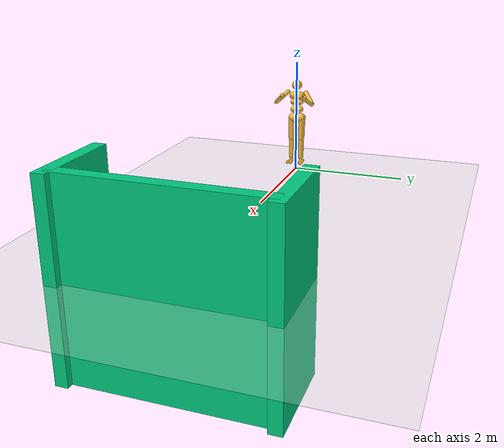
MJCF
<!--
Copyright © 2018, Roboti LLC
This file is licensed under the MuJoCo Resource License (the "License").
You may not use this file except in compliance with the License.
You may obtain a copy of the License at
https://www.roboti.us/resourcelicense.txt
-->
<mujoco model="Humanoid in Soccer Field">

    <compiler angle="degree"/>

    <option timestep="0.005" iterations="50" solver="Newton" jacobian="sparse" cone="pyramidal" tolerance="1e-10"/>

    <size njmax="1500" nconmax="500" nstack="5000000"/>

    <default>
        <geom solimp=".9 .9 .01"/>

        <default class="humanoid">
            <geom material="humanoid"/>
            <joint damping="1" limited="true"/>
            <motor ctrllimited="true" ctrlrange="-.4 .4"/>
        </default>

        <default class="object">
            <geom type="sphere" material="object" size="0.1"/>
        </default>

   </default>
    <asset>
   <texture builtin="gradient" height="100" rgb1=".4 .5 .6" rgb2="0 0 0" type="skybox" width="100"/>
        <texture builtin="flat" height="1278" mark="cross" markrgb="1 1 1" name="texgeom" random="0.01" rgb1="0.8 0.6 0.4" rgb2="0.8 0.6 0.4" type="cube" width="127"/>
        <texture builtin="checker" height="100" name="texplane" rgb1="0 0 0" rgb2="0.8 0.8 0.8" type="2d" width="100"/>
        <material name="MatPlane" reflectance="0.5" shininess="1" specular="1" texrepeat="60 60" texture="texplane"/>
        <material name="geom" texture="texgeom" texuniform="true"/>
        <material name='humanoid' texture="texgeom" texuniform="true" rgba="1.2 1.2 0.6 1"/>
        <material name='object' texture="texgeom" texuniform="true" rgba=".9 .1 .1 1" />
    </asset>

    <visual>
        <quality shadowsize="4096" offsamples="8"/>
        <map znear="0.1" force="0.05"/>
    </visual>

    <statistic extent="4"/>

    <worldbody>

        <light cutoff="100" diffuse="1 1 1" dir="-0 0 -1.3" directional="true" exponent="1" pos="0 0 1.3" specular=".1 .1 .1"/>

	<!--Floor-->
        <geom condim="3" friction="1 .1 .1" material="MatPlane" name="floor" pos="0 0 0" rgba="0.8 0.9 0.8 1" size="20 20 0.125" type="plane"/>
	<!--Goal-->
	<geom name="frontpost" type="box" rgba="0 0.8 0.5 1" pos="5.5 0 0" size=".1 1.5 1.5"/>
    <geom name="leftpost" type="box" rgba="0 0.8 0.5 1" pos="5 1.5 0" size="0.7 .1 1.5"/>
    <geom name="rightpost" type="box" rgba="0 0.8 0.5 1"  pos="5 -1.5 0" size="0.7 .1 1.5"/>

        <body name='torso' pos='0 0 1.4' childclass="humanoid">
            <freejoint name="root"/>
            <geom name='torso1' type='capsule' fromto='0 -.07 0 0 .07 0'  size='0.07'/>
            <geom name='head' type='sphere' pos='0 0 .19' size='.09'/>
            <geom name='uwaist' type='capsule' fromto='-.01 -.06 -.12 -.01 .06 -.12' size='0.06'/>
            <body name='lwaist' pos='-.01 0 -0.260' quat='1.000 0 -0.002 0' >
                <geom name='lwaist' type='capsule' fromto='0 -.06 0 0 .06 0'  size='0.06' />
                <joint name='abdomen_z' type='hinge' pos='0 0 0.065' axis='0 0 1' range='-45 45' damping='5' stiffness='20' armature='0.02' />
                <joint name='abdomen_y' type='hinge' pos='0 0 0.065' axis='0 1 0' range='-75 30' damping='5' stiffness='10' armature='0.02' />
                <body name='pelvis' pos='0 0 -0.165' quat='1.000 0 -0.002 0' >
                    <joint name='abdomen_x' type='hinge' pos='0 0 0.1' axis='1 0 0' range='-35 35' damping='5' stiffness='10' armature='0.02' />
                    <geom name='butt' type='capsule' fromto='-.02 -.07 0 -.02 .07 0'  size='0.09' />
                    <body name='right_thigh' pos='0 -0.1 -0.04' >
                        <joint name='right_hip_x' type='hinge' pos='0 0 0' axis='1 0 0' range='-25 5'   damping='5' stiffness='10' armature='0.01' />
                        <joint name='right_hip_z' type='hinge' pos='0 0 0' axis='0 0 1' range='-60 35'  damping='5' stiffness='10' armature='0.01' />
                        <joint name='right_hip_y' type='hinge' pos='0 0 0' axis='0 1 0' range='-120 20' damping='5' stiffness='20' armature='0.01' />
                        <geom name='right_thigh1' type='capsule' fromto='0 0 0 0 0.01 -.34'  size='0.06' />
                        <body name='right_shin' pos='0 0.01 -0.403' >
                            <joint name='right_knee' type='hinge' pos='0 0 .02' axis='0 -1 0' range='-160 -2' stiffness='1' armature='0.0060' />
                            <geom name='right_shin1' type='capsule' fromto='0 0 0 0 0 -.3'   size='0.049' />
                            <body name='right_foot' pos='0 0 -.39' >
                                <joint name='right_ankle_y' type='hinge' pos='0 0 0.08' axis='0 1 0'   range='-50 50' stiffness='4' armature='0.0008' />
                                <joint name='right_ankle_x' type='hinge' pos='0 0 0.04' axis='1 0 0.5' range='-50 50' stiffness='1'  armature='0.0006' />
                                <geom name='right_foot_cap1' type='capsule' fromto='-.07 -0.02 0 0.14 -0.04 0'  size='0.027' />
                                <geom name='right_foot_cap2' type='capsule' fromto='-.07 0 0 0.14  0.02 0'  size='0.027' />
                            </body>
                        </body>
                    </body>
                    <body name='left_thigh' pos='0 0.1 -0.04' >
                        <joint name='left_hip_x' type='hinge' pos='0 0 0' axis='-1 0 0' range='-25 5'  damping='5' stiffness='10' armature='0.01' />
                        <joint name='left_hip_z' type='hinge' pos='0 0 0' axis='0 0 -1' range='-60 35' damping='5' stiffness='10' armature='0.01' />
                        <joint name='left_hip_y' type='hinge' pos='0 0 0' axis='0 1 0' range='-120 20' damping='5' stiffness='20' armature='0.01' />
                        <geom name='left_thigh1' type='capsule' fromto='0 0 0 0 -0.01 -.34'  size='0.06' />
                        <body name='left_shin' pos='0 -0.01 -0.403' >
                            <joint name='left_knee' type='hinge' pos='0 0 .02' axis='0 -1 0' range='-160 -2' stiffness='1' armature='0.0060' />
                            <geom name='left_shin1' type='capsule' fromto='0 0 0 0 0 -.3'   size='0.049' />
                            <body name='left_foot' pos='0 0 -.39' >
                                <joint name='left_ankle_y' type='hinge' pos='0 0 0.08' axis='0 1 0'   range='-50 50'  stiffness='4' armature='0.0008' />
                                <joint name='left_ankle_x' type='hinge' pos='0 0 0.04' axis='1 0 0.5' range='-50 50'  stiffness='1'  armature='0.0006' />
                                <geom name='left_foot_cap1' type='capsule' fromto='-.07 0.02 0 0.14 0.04 0'  size='0.027' />
                                <geom name='left_foot_cap2' type='capsule' fromto='-.07 0 0 0.14  -0.02 0'  size='0.027' />
                            </body>
                        </body>
                    </body>
                </body>
            </body>
            <body name='right_upper_arm' pos='0 -0.17 0.06' >
                <joint name='right_shoulder1' type='hinge' pos='0 0 0' axis='2 1 1'  range='-85 60' stiffness='1' armature='0.0068' />
                <joint name='right_shoulder2' type='hinge' pos='0 0 0' axis='0 -1 1' range='-85 60' stiffness='1'  armature='0.0051' />
                <geom name='right_uarm1' type='capsule' fromto='0 0 0 .16 -.16 -.16'  size='0.04 0.16' />
                <body name='right_lower_arm' pos='.18 -.18 -.18' >
                    <joint name='right_elbow' type='hinge' pos='0 0 0' axis='0 -1 1' range='-90 50'  stiffness='0' armature='0.0028' />
                    <geom name='right_larm' type='capsule' fromto='0.01 0.01 0.01 .17 .17 .17'  size='0.031' />
                    <geom name='right_hand' type='sphere' pos='.18 .18 .18'  size='0.04'/>
                </body>
            </body>
            <body name='left_upper_arm' pos='0 0.17 0.06' >
                <joint name='left_shoulder1' type='hinge' pos='0 0 0' axis='2 -1 1' range='-60 85' stiffness='1' armature='0.0068' />
                <joint name='left_shoulder2' type='hinge' pos='0 0 0' axis='0 1 1' range='-60 85'  stiffness='1' armature='0.0051' />
                <geom name='left_uarm1' type='capsule' fromto='0 0 0 .16 .16 -.16'  size='0.04 0.16' />
                <body name='left_lower_arm' pos='.18 .18 -.18' >
                    <joint name='left_elbow' type='hinge' pos='0 0 0' axis='0 -1 -1' range='-90 50' stiffness='0' armature='0.0028' />
                    <geom name='left_larm' type='capsule' fromto='0.01 -0.01 0.01 .17 -.17 .17'  size='0.031' />
                    <geom name='left_hand' type='sphere' pos='.18 -.18 .18'  size='0.04'/>
                </body>
            </body>
        </body>

        <body pos="1 0.5 0" quat="0.471405 0.471405 0.707107 0.235702">
            <freejoint/>
            <geom class="object"/>
        </body>
    </worldbody>

<tendon>
        <fixed name="left_hipknee">
            <joint coef="-1" joint="left_hip_y"/>
            <joint coef="1" joint="left_knee"/>
        </fixed>
        <fixed name="right_hipknee">
            <joint coef="-1" joint="right_hip_y"/>
            <joint coef="1" joint="right_knee"/>
        </fixed>
    </tendon>

    <actuator>
        <motor gear="100" joint="abdomen_y" name="abdomen_y"/>
        <motor gear="100" joint="abdomen_z" name="abdomen_z"/>
        <motor gear="100" joint="abdomen_x" name="abdomen_x"/>
        <motor gear="100" joint="right_hip_x" name="right_hip_x"/>
        <motor gear="100" joint="right_hip_z" name="right_hip_z"/>
        <motor gear="300" joint="right_hip_y" name="right_hip_y"/>
        <motor gear="200" joint="right_knee" name="right_knee"/>
        <motor gear="100" joint="left_hip_x" name="left_hip_x"/>
        <motor gear="100" joint="left_hip_z" name="left_hip_z"/>
        <motor gear="300" joint="left_hip_y" name="left_hip_y"/>
        <motor gear="200" joint="left_knee" name="left_knee"/>
        <motor gear="25" joint="right_shoulder1" name="right_shoulder1"/>
        <motor gear="25" joint="right_shoulder2" name="right_shoulder2"/>
        <motor gear="25" joint="right_elbow" name="right_elbow"/>
        <motor gear="25" joint="left_shoulder1" name="left_shoulder1"/>
        <motor gear="25" joint="left_shoulder2" name="left_shoulder2"/>
        <motor gear="25" joint="left_elbow" name="left_elbow"/>
    </actuator>

</mujoco>
